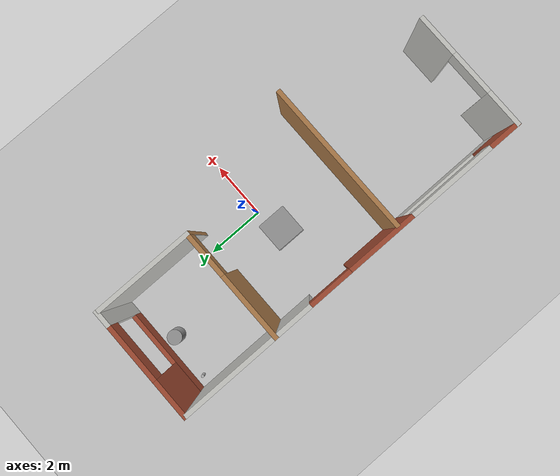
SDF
<sdf version="1.6">
 <world name="default">
  <model name="ground_plane">
   <static>1</static>
   <link name="link">
    <collision name="collision">
     <geometry><plane><normal>0 0 1</normal><size>100 100</size></plane></geometry>
     <surface><friction><ode><mu>100</mu><mu2>50</mu2></ode></friction></surface>
    </collision>
    <visual name="visual">
     <cast_shadows>0</cast_shadows>
     <geometry><plane><normal>0 0 1</normal><size>100 100</size></plane></geometry>
     <material>
      <script><uri>file://media/materials/scripts/gazebo.material</uri><name>Gazebo/Grey</name></script>
     </material>
    </visual>
   </link>
  </model>
  <model name="unit_box_0">
   <pose>-0.935758 -0.265766 0.499995 1e-05 -0 0</pose>
   <link name="link">
    <inertial>
     <mass>1</mass>
     <inertia>
      <ixx>0.166667</ixx>
      <ixy>0</ixy>
      <ixz>0</ixz>
      <iyy>0.166667</iyy>
      <iyz>0</iyz>
      <izz>0.166667</izz>
     </inertia>
    </inertial>
    <collision name="collision"><geometry><box><size>1 1 1</size></box></geometry></collision>
    <visual name="visual">
     <geometry><box><size>1 1 1</size></box></geometry>
     <material>
      <script><name>Gazebo/Grey</name><uri>file://media/materials/scripts/gazebo.material</uri></script>
     </material>
    </visual>
   </link>
  </model>
  <model name="unit_cylinder_0_0">
   <link name="link">
    <inertial>
     <mass>1</mass>
     <inertia><ixx>0.145833</ixx><ixy>0</ixy><ixz>0</ixz><iyy>0.145833</iyy><iyz>0</iyz><izz>0.125</izz></inertia>
    </inertial>
    <visual name="visual">
     <geometry><cylinder><radius>0.25</radius><length>0.5</length></cylinder></geometry>
     <material>
      <script><name>Gazebo/Grey</name><uri>file://media/materials/scripts/gazebo.material</uri></script>
      <ambient>0.3 0.3 0.3 1</ambient>
      <diffuse>0.7 0.7 0.7 1</diffuse>
      <specular>0.01 0.01 0.01 1</specular>
      <emissive>0 0 0 1</emissive>
      <shader type="vertex"><normal_map>__default__</normal_map></shader>
     </material>
    </visual>
    <collision name="collision">
     <geometry><cylinder><radius>0.25</radius><length>0.5</length></cylinder></geometry>
     <surface>
      <friction>
       <ode><mu>1</mu><mu2>1</mu2><fdir1>0 0 0</fdir1><slip1>0</slip1><slip2>0</slip2></ode>
       <torsional>
        <coefficient>1</coefficient>
        <patch_radius>0</patch_radius>
        <surface_radius>0</surface_radius>
        <use_patch_radius>1</use_patch_radius>
        <ode><slip>0</slip></ode>
       </torsional>
      </friction>
      <bounce><restitution_coefficient>0</restitution_coefficient><threshold>1e+06</threshold></bounce>
      <contact>
       <collide_without_contact>0</collide_without_contact>
       <collide_without_contact_bitmask>1</collide_without_contact_bitmask>
       <collide_bitmask>1</collide_bitmask>
       <ode>
        <soft_cfm>0</soft_cfm>
        <soft_erp>0.2</soft_erp>
        <kp>1e+13</kp>
        <kd>1</kd>
        <max_vel>0.01</max_vel>
        <min_depth>0</min_depth>
       </ode>
       <bullet>
        <split_impulse>1</split_impulse>
        <split_impulse_penetration_threshold>-0.01</split_impulse_penetration_threshold>
        <soft_cfm>0</soft_cfm>
        <soft_erp>0.2</soft_erp>
        <kp>1e+13</kp>
        <kd>1</kd>
       </bullet>
      </contact>
     </surface>
    </collision>
   </link>
   <static>0</static>
   <pose>-1.30437 4.62965 0.249991 0 -0 0</pose>
  </model>
  <model name="beer">
   <link name="link">
    <pose>0 0 0.115 0 -0 0</pose>
    <inertial>
     <mass>0.39</mass>
     <inertia><ixx>0.00058</ixx><ixy>0</ixy><ixz>0</ixz><iyy>0.00058</iyy><iyz>0</iyz><izz>0.00019</izz></inertia>
    </inertial>
    <collision name="collision">
     <geometry><cylinder><radius>0.055</radius><length>0.23</length></cylinder></geometry>
    </collision>
    <visual name="visual">
     <geometry><cylinder><radius>0.055</radius><length>0.23</length></cylinder></geometry>
     <material>
      <script>
       <uri>model://beer/materials/scripts</uri>
       <uri>model://beer/materials/textures</uri>
       <name>Beer/Diffuse</name>
      </script>
     </material>
    </visual>
   </link>
   <pose>-2.85151 4.84104 -8e-06 -1e-06 -0 -2.3e-05</pose>
  </model>
  <model name="mybuilding_0_0">
   <link name="Wall_100">
    <pose>-4.97405 -5.32475 0 0 -0 0</pose>
    <inertial>
     <mass>1</mass>
     <inertia><ixx>1</ixx><ixy>0</ixy><ixz>0</ixz><iyy>1</iyy><iyz>0</iyz><izz>1</izz></inertia>
    </inertial>
    <visual name="Wall_100_Visual_0">
     <pose>-1.47284 0 1.25 0 -0 0</pose>
     <geometry><box><size>1.30431 0.15 2.5</size></box></geometry>
     <material>
      <script><uri>file://media/materials/scripts/gazebo.material</uri><name>Gazebo/CeilingTiled</name></script>
      <ambient>0.435 0.796 0.675 1</ambient>
      <diffuse>1 1 1 1</diffuse>
      <specular>0 0 0 1</specular>
      <emissive>0 0 0 1</emissive>
      <shader type="vertex"><normal_map>__default__</normal_map></shader>
     </material>
    </visual>
    <visual name="Wall_100_Visual_1">
     <pose>1.40216 0 1.25 0 -0 0</pose>
     <geometry><box><size>1.44569 0.15 2.5</size></box></geometry>
     <material>
      <script><uri>file://media/materials/scripts/gazebo.material</uri><name>Gazebo/CeilingTiled</name></script>
      <ambient>0.435 0.796 0.675 1</ambient>
      <diffuse>1 1 1 1</diffuse>
      <specular>0 0 0 1</specular>
      <emissive>0 0 0 1</emissive>
      <shader type="vertex"><normal_map>__default__</normal_map></shader>
     </material>
    </visual>
    <visual name="Wall_100_Visual_2">
     <pose>-0.07069 0 2.25 0 -0 0</pose>
     <geometry><box><size>1.5 0.15 0.5</size></box></geometry>
     <material>
      <script><uri>file://media/materials/scripts/gazebo.material</uri><name>Gazebo/CeilingTiled</name></script>
      <ambient>0.435 0.796 0.675 1</ambient>
      <diffuse>1 1 1 1</diffuse>
      <specular>0 0 0 1</specular>
      <emissive>0 0 0 1</emissive>
      <shader type="vertex"><normal_map>__default__</normal_map></shader>
     </material>
    </visual>
    <collision name="Wall_100_Collision_0">
     <pose>-1.47284 0 1.25 0 -0 0</pose>
     <geometry><box><size>1.30431 0.15 2.5</size></box></geometry>
     <surface>
      <friction>
       <ode><mu>1</mu><mu2>1</mu2><fdir1>0 0 0</fdir1><slip1>0</slip1><slip2>0</slip2></ode>
       <torsional>
        <coefficient>1</coefficient>
        <patch_radius>0</patch_radius>
        <surface_radius>0</surface_radius>
        <use_patch_radius>1</use_patch_radius>
        <ode><slip>0</slip></ode>
       </torsional>
      </friction>
      <bounce><restitution_coefficient>0</restitution_coefficient><threshold>1e+06</threshold></bounce>
      <contact>
       <collide_without_contact>0</collide_without_contact>
       <collide_without_contact_bitmask>1</collide_without_contact_bitmask>
       <collide_bitmask>1</collide_bitmask>
       <ode>
        <soft_cfm>0</soft_cfm>
        <soft_erp>0.2</soft_erp>
        <kp>1e+13</kp>
        <kd>1</kd>
        <max_vel>0.01</max_vel>
        <min_depth>0</min_depth>
       </ode>
       <bullet>
        <split_impulse>1</split_impulse>
        <split_impulse_penetration_threshold>-0.01</split_impulse_penetration_threshold>
        <soft_cfm>0</soft_cfm>
        <soft_erp>0.2</soft_erp>
        <kp>1e+13</kp>
        <kd>1</kd>
       </bullet>
      </contact>
     </surface>
    </collision>
    <collision name="Wall_100_Collision_1">
     <pose>1.40216 0 1.25 0 -0 0</pose>
     <geometry><box><size>1.44569 0.15 2.5</size></box></geometry>
     <surface>
      <friction>
       <ode><mu>1</mu><mu2>1</mu2><fdir1>0 0 0</fdir1><slip1>0</slip1><slip2>0</slip2></ode>
       <torsional>
        <coefficient>1</coefficient>
        <patch_radius>0</patch_radius>
        <surface_radius>0</surface_radius>
        <use_patch_radius>1</use_patch_radius>
        <ode><slip>0</slip></ode>
       </torsional>
      </friction>
      <bounce><restitution_coefficient>0</restitution_coefficient><threshold>1e+06</threshold></bounce>
      <contact>
       <collide_without_contact>0</collide_without_contact>
       <collide_without_contact_bitmask>1</collide_without_contact_bitmask>
       <collide_bitmask>1</collide_bitmask>
       <ode>
        <soft_cfm>0</soft_cfm>
        <soft_erp>0.2</soft_erp>
        <kp>1e+13</kp>
        <kd>1</kd>
        <max_vel>0.01</max_vel>
        <min_depth>0</min_depth>
       </ode>
       <bullet>
        <split_impulse>1</split_impulse>
        <split_impulse_penetration_threshold>-0.01</split_impulse_penetration_threshold>
        <soft_cfm>0</soft_cfm>
        <soft_erp>0.2</soft_erp>
        <kp>1e+13</kp>
        <kd>1</kd>
       </bullet>
      </contact>
     </surface>
    </collision>
    <collision name="Wall_100_Collision_2">
     <pose>-0.07069 0 2.25 0 -0 0</pose>
     <geometry><box><size>1.5 0.15 0.5</size></box></geometry>
     <surface>
      <friction>
       <ode><mu>1</mu><mu2>1</mu2><fdir1>0 0 0</fdir1><slip1>0</slip1><slip2>0</slip2></ode>
       <torsional>
        <coefficient>1</coefficient>
        <patch_radius>0</patch_radius>
        <surface_radius>0</surface_radius>
        <use_patch_radius>1</use_patch_radius>
        <ode><slip>0</slip></ode>
       </torsional>
      </friction>
      <bounce><restitution_coefficient>0</restitution_coefficient><threshold>1e+06</threshold></bounce>
      <contact>
       <collide_without_contact>0</collide_without_contact>
       <collide_without_contact_bitmask>1</collide_without_contact_bitmask>
       <collide_bitmask>1</collide_bitmask>
       <ode>
        <soft_cfm>0</soft_cfm>
        <soft_erp>0.2</soft_erp>
        <kp>1e+13</kp>
        <kd>1</kd>
        <max_vel>0.01</max_vel>
        <min_depth>0</min_depth>
       </ode>
       <bullet>
        <split_impulse>1</split_impulse>
        <split_impulse_penetration_threshold>-0.01</split_impulse_penetration_threshold>
        <soft_cfm>0</soft_cfm>
        <soft_erp>0.2</soft_erp>
        <kp>1e+13</kp>
        <kd>1</kd>
       </bullet>
      </contact>
     </surface>
    </collision>
   </link>
   <link name="Wall_124">
    <pose>-3.17983 5.60426 0 0 -0 1.5708</pose>
    <visual name="Wall_124_Visual">
     <pose>0 0 1.25 0 -0 0</pose>
     <geometry><box><size>3.5 0.15 2.5</size></box></geometry>
     <material>
      <script><uri>file://media/materials/scripts/gazebo.material</uri><name>Gazebo/CeilingTiled</name></script>
      <ambient>0.333333 0.333333 0.498039 1</ambient>
      <diffuse>1 1 1 1</diffuse>
      <specular>0 0 0 1</specular>
      <emissive>0 0 0 1</emissive>
     </material>
    </visual>
    <collision name="Wall_124_Collision">
     <pose>0 0 1.25 0 -0 0</pose>
     <geometry><box><size>3.5 0.15 2.5</size></box></geometry>
     <surface>
      <friction>
       <ode><mu>1</mu><mu2>1</mu2><fdir1>0 0 0</fdir1><slip1>0</slip1><slip2>0</slip2></ode>
       <torsional>
        <coefficient>1</coefficient>
        <patch_radius>0</patch_radius>
        <surface_radius>0</surface_radius>
        <use_patch_radius>1</use_patch_radius>
        <ode><slip>0</slip></ode>
       </torsional>
      </friction>
      <bounce><restitution_coefficient>0</restitution_coefficient><threshold>1e+06</threshold></bounce>
      <contact>
       <collide_without_contact>0</collide_without_contact>
       <collide_without_contact_bitmask>1</collide_without_contact_bitmask>
       <collide_bitmask>1</collide_bitmask>
       <ode>
        <soft_cfm>0</soft_cfm>
        <soft_erp>0.2</soft_erp>
        <kp>1e+13</kp>
        <kd>1</kd>
        <max_vel>0.01</max_vel>
        <min_depth>0</min_depth>
       </ode>
       <bullet>
        <split_impulse>1</split_impulse>
        <split_impulse_penetration_threshold>-0.01</split_impulse_penetration_threshold>
        <soft_cfm>0</soft_cfm>
        <soft_erp>0.2</soft_erp>
        <kp>1e+13</kp>
        <kd>1</kd>
       </bullet>
      </contact>
     </surface>
    </collision>
   </link>
   <link name="Wall_127">
    <pose>-5.10482 7.27926 0 0 -0 3.14159</pose>
    <inertial>
     <mass>1</mass>
     <inertia><ixx>1</ixx><ixy>0</ixy><ixz>0</ixz><iyy>1</iyy><iyz>0</iyz><izz>1</izz></inertia>
    </inertial>
    <visual name="Wall_127_Visual_0">
     <pose>-1.69078 0 1.25 0 -0 0</pose>
     <geometry><box><size>0.618444 0.15 2.5</size></box></geometry>
     <material>
      <script><uri>file://media/materials/scripts/gazebo.material</uri><name>Gazebo/CeilingTiled</name></script>
      <ambient>1 1 1 1</ambient>
      <diffuse>1 1 1 1</diffuse>
      <specular>0.2 0.2 0.2 1</specular>
      <emissive>0 0 0 1</emissive>
      <shader type="vertex"><normal_map>__default__</normal_map></shader>
     </material>
    </visual>
    <visual name="Wall_127_Visual_1">
     <pose>0.309222 0 0.25 0 -0 0</pose>
     <geometry><box><size>3.38156 0.15 0.5</size></box></geometry>
     <material>
      <script><uri>file://media/materials/scripts/gazebo.material</uri><name>Gazebo/Bricks</name></script>
      <ambient>1 1 1 1</ambient>
      <diffuse>1 1 1 1</diffuse>
      <specular>0.2 0.2 0.2 1</specular>
      <emissive>0 0 0 1</emissive>
      <shader type="vertex"><normal_map>__default__</normal_map></shader>
     </material>
    </visual>
    <visual name="Wall_127_Visual_3">
     <pose>-0.381556 0 2.25 0 -0 0</pose>
     <geometry><box><size>2 0.15 0.5</size></box></geometry>
     <material>
      <script><uri>file://media/materials/scripts/gazebo.material</uri><name>Gazebo/Bricks</name></script>
      <ambient>1 1 1 1</ambient>
      <diffuse>1 1 1 1</diffuse>
      <specular>0.2 0.2 0.2 1</specular>
      <emissive>0 0 0 1</emissive>
      <shader type="vertex"><normal_map>__default__</normal_map></shader>
     </material>
    </visual>
    <visual name="Wall_127_Visual_2">
     <pose>1.30922 0 1.5 0 -0 0</pose>
     <geometry><box><size>1.38156 0.15 2</size></box></geometry>
     <material>
      <script><uri>file://media/materials/scripts/gazebo.material</uri><name>Gazebo/Bricks</name></script>
      <ambient>1 1 1 1</ambient>
      <diffuse>1 1 1 1</diffuse>
      <specular>0.2 0.2 0.2 1</specular>
      <emissive>0 0 0 1</emissive>
      <shader type="vertex"><normal_map>__default__</normal_map></shader>
     </material>
    </visual>
    <collision name="Wall_127_Collision_0">
     <pose>-1.69078 0 1.25 0 -0 0</pose>
     <geometry><box><size>0.618444 0.15 2.5</size></box></geometry>
     <surface>
      <friction>
       <ode><mu>1</mu><mu2>1</mu2><fdir1>0 0 0</fdir1><slip1>0</slip1><slip2>0</slip2></ode>
       <torsional>
        <coefficient>1</coefficient>
        <patch_radius>0</patch_radius>
        <surface_radius>0</surface_radius>
        <use_patch_radius>1</use_patch_radius>
        <ode><slip>0</slip></ode>
       </torsional>
      </friction>
      <bounce><restitution_coefficient>0</restitution_coefficient><threshold>1e+06</threshold></bounce>
      <contact>
       <collide_without_contact>0</collide_without_contact>
       <collide_without_contact_bitmask>1</collide_without_contact_bitmask>
       <collide_bitmask>1</collide_bitmask>
       <ode>
        <soft_cfm>0</soft_cfm>
        <soft_erp>0.2</soft_erp>
        <kp>1e+13</kp>
        <kd>1</kd>
        <max_vel>0.01</max_vel>
        <min_depth>0</min_depth>
       </ode>
       <bullet>
        <split_impulse>1</split_impulse>
        <split_impulse_penetration_threshold>-0.01</split_impulse_penetration_threshold>
        <soft_cfm>0</soft_cfm>
        <soft_erp>0.2</soft_erp>
        <kp>1e+13</kp>
        <kd>1</kd>
       </bullet>
      </contact>
     </surface>
    </collision>
    <collision name="Wall_127_Collision_1">
     <pose>0.309222 0 0.25 0 -0 0</pose>
     <geometry><box><size>3.38156 0.15 0.5</size></box></geometry>
     <surface>
      <friction>
       <ode><mu>1</mu><mu2>1</mu2><fdir1>0 0 0</fdir1><slip1>0</slip1><slip2>0</slip2></ode>
       <torsional>
        <coefficient>1</coefficient>
        <patch_radius>0</patch_radius>
        <surface_radius>0</surface_radius>
        <use_patch_radius>1</use_patch_radius>
        <ode><slip>0</slip></ode>
       </torsional>
      </friction>
      <bounce><restitution_coefficient>0</restitution_coefficient><threshold>1e+06</threshold></bounce>
      <contact>
       <collide_without_contact>0</collide_without_contact>
       <collide_without_contact_bitmask>1</collide_without_contact_bitmask>
       <collide_bitmask>1</collide_bitmask>
       <ode>
        <soft_cfm>0</soft_cfm>
        <soft_erp>0.2</soft_erp>
        <kp>1e+13</kp>
        <kd>1</kd>
        <max_vel>0.01</max_vel>
        <min_depth>0</min_depth>
       </ode>
       <bullet>
        <split_impulse>1</split_impulse>
        <split_impulse_penetration_threshold>-0.01</split_impulse_penetration_threshold>
        <soft_cfm>0</soft_cfm>
        <soft_erp>0.2</soft_erp>
        <kp>1e+13</kp>
        <kd>1</kd>
       </bullet>
      </contact>
     </surface>
    </collision>
    <collision name="Wall_127_Collision_2">
     <pose>1.30922 0 1.5 0 -0 0</pose>
     <geometry><box><size>1.38156 0.15 2</size></box></geometry>
     <surface>
      <friction>
       <ode><mu>1</mu><mu2>1</mu2><fdir1>0 0 0</fdir1><slip1>0</slip1><slip2>0</slip2></ode>
       <torsional>
        <coefficient>1</coefficient>
        <patch_radius>0</patch_radius>
        <surface_radius>0</surface_radius>
        <use_patch_radius>1</use_patch_radius>
        <ode><slip>0</slip></ode>
       </torsional>
      </friction>
      <bounce><restitution_coefficient>0</restitution_coefficient><threshold>1e+06</threshold></bounce>
      <contact>
       <collide_without_contact>0</collide_without_contact>
       <collide_without_contact_bitmask>1</collide_without_contact_bitmask>
       <collide_bitmask>1</collide_bitmask>
       <ode>
        <soft_cfm>0</soft_cfm>
        <soft_erp>0.2</soft_erp>
        <kp>1e+13</kp>
        <kd>1</kd>
        <max_vel>0.01</max_vel>
        <min_depth>0</min_depth>
       </ode>
       <bullet>
        <split_impulse>1</split_impulse>
        <split_impulse_penetration_threshold>-0.01</split_impulse_penetration_threshold>
        <soft_cfm>0</soft_cfm>
        <soft_erp>0.2</soft_erp>
        <kp>1e+13</kp>
        <kd>1</kd>
       </bullet>
      </contact>
     </surface>
    </collision>
    <collision name="Wall_127_Collision_3">
     <pose>-0.381556 0 2.25 0 -0 0</pose>
     <geometry><box><size>2 0.15 0.5</size></box></geometry>
     <surface>
      <friction>
       <ode><mu>1</mu><mu2>1</mu2><fdir1>0 0 0</fdir1><slip1>0</slip1><slip2>0</slip2></ode>
       <torsional>
        <coefficient>1</coefficient>
        <patch_radius>0</patch_radius>
        <surface_radius>0</surface_radius>
        <use_patch_radius>1</use_patch_radius>
        <ode><slip>0</slip></ode>
       </torsional>
      </friction>
      <bounce><restitution_coefficient>0</restitution_coefficient><threshold>1e+06</threshold></bounce>
      <contact>
       <collide_without_contact>0</collide_without_contact>
       <collide_without_contact_bitmask>1</collide_without_contact_bitmask>
       <collide_bitmask>1</collide_bitmask>
       <ode>
        <soft_cfm>0</soft_cfm>
        <soft_erp>0.2</soft_erp>
        <kp>1e+13</kp>
        <kd>1</kd>
        <max_vel>0.01</max_vel>
        <min_depth>0</min_depth>
       </ode>
       <bullet>
        <split_impulse>1</split_impulse>
        <split_impulse_penetration_threshold>-0.01</split_impulse_penetration_threshold>
        <soft_cfm>0</soft_cfm>
        <soft_erp>0.2</soft_erp>
        <kp>1e+13</kp>
        <kd>1</kd>
       </bullet>
      </contact>
     </surface>
    </collision>
   </link>
   <link name="Wall_128">
    <pose>-7.02982 0.979263 0 0 0 -1.5708</pose>
    <inertial>
     <mass>1</mass>
     <inertia><ixx>1</ixx><ixy>0</ixy><ixz>0</ixz><iyy>1</iyy><iyz>0</iyz><izz>1</izz></inertia>
    </inertial>
    <visual name="Wall_128_Visual_0">
     <pose>-3.99417 0 1.25 0 -0 0</pose>
     <geometry><box><size>4.76166 0.15 2.5</size></box></geometry>
     <material>
      <script><uri>file://media/materials/scripts/gazebo.material</uri><name>Gazebo/CeilingTiled</name></script>
      <ambient>0.2 0.6 0.8 1</ambient>
      <diffuse>1 1 1 1</diffuse>
      <specular>0.2 0.2 0.2 1</specular>
      <emissive>0 0 0 1</emissive>
      <shader type="vertex"><normal_map>__default__</normal_map></shader>
     </material>
    </visual>
    <visual name="Wall_128_Visual_1">
     <pose>1.07472 0 1.25 0 -0 0</pose>
     <geometry><box><size>2.37612 0.15 2.5</size></box></geometry>
     <material>
      <script><uri>file://media/materials/scripts/gazebo.material</uri><name>Gazebo/Bricks</name></script>
      <ambient>1 1 1 1</ambient>
      <diffuse>1 1 1 1</diffuse>
      <specular>0.2 0.2 0.2 1</specular>
      <emissive>0 0 0 1</emissive>
      <shader type="vertex"><normal_map>__default__</normal_map></shader>
     </material>
    </visual>
    <visual name="Wall_128_Visual_3">
     <pose>5.81889 0 1.75 0 -0 0</pose>
     <geometry><box><size>1.11222 0.15 1.5</size></box></geometry>
     <material>
      <script><uri>file://media/materials/scripts/gazebo.material</uri><name>Gazebo/Bricks</name></script>
      <ambient>1 1 1 1</ambient>
      <diffuse>1 1 1 1</diffuse>
      <specular>0.2 0.2 0.2 1</specular>
      <emissive>0 0 0 1</emissive>
      <shader type="vertex"><normal_map>__default__</normal_map></shader>
     </material>
    </visual>
    <visual name="Wall_128_Visual_2">
     <pose>4.31889 0 0.5 0 -0 0</pose>
     <geometry><box><size>4.11222 0.15 1</size></box></geometry>
     <material>
      <script><uri>file://media/materials/scripts/gazebo.material</uri><name>Gazebo/CeilingTiled</name></script>
      <ambient>0.6 1 0.5 1</ambient>
      <diffuse>1 1 1 1</diffuse>
      <specular>0.2 0.2 0.2 1</specular>
      <emissive>0 0 0 1</emissive>
      <shader type="vertex"><normal_map>__default__</normal_map></shader>
     </material>
    </visual>
    <visual name="Wall_128_Visual_4">
     <pose>-0.863345 0 2.25 0 -0 0</pose>
     <geometry><box><size>1.5 0.15 0.5</size></box></geometry>
     <material>
      <script><uri>file://media/materials/scripts/gazebo.material</uri><name>Gazebo/Bricks</name></script>
      <ambient>1 1 1 1</ambient>
      <diffuse>1 1 1 1</diffuse>
      <specular>0.2 0.2 0.2 1</specular>
      <emissive>0 0 0 1</emissive>
      <shader type="vertex"><normal_map>__default__</normal_map></shader>
     </material>
    </visual>
    <visual name="Wall_128_Visual_5">
     <pose>3.76278 0 2.25 0 -0 0</pose>
     <geometry><box><size>3 0.15 0.5</size></box></geometry>
     <material>
      <script><uri>file://media/materials/scripts/gazebo.material</uri><name>Gazebo/CeilingTiled</name></script>
      <ambient>0.3 0.4 0.3 1</ambient>
      <diffuse>1 1 1 1</diffuse>
      <specular>0.2 0.2 0.2 1</specular>
      <emissive>0 0 0 1</emissive>
      <shader type="vertex"><normal_map>__default__</normal_map></shader>
     </material>
    </visual>
    <collision name="Wall_128_Collision_0">
     <pose>-3.99417 0 1.25 0 -0 0</pose>
     <geometry><box><size>4.76166 0.15 2.5</size></box></geometry>
     <surface>
      <friction>
       <ode><mu>1</mu><mu2>1</mu2><fdir1>0 0 0</fdir1><slip1>0</slip1><slip2>0</slip2></ode>
       <torsional>
        <coefficient>1</coefficient>
        <patch_radius>0</patch_radius>
        <surface_radius>0</surface_radius>
        <use_patch_radius>1</use_patch_radius>
        <ode><slip>0</slip></ode>
       </torsional>
      </friction>
      <bounce><restitution_coefficient>0</restitution_coefficient><threshold>1e+06</threshold></bounce>
      <contact>
       <collide_without_contact>0</collide_without_contact>
       <collide_without_contact_bitmask>1</collide_without_contact_bitmask>
       <collide_bitmask>1</collide_bitmask>
       <ode>
        <soft_cfm>0</soft_cfm>
        <soft_erp>0.2</soft_erp>
        <kp>1e+13</kp>
        <kd>1</kd>
        <max_vel>0.01</max_vel>
        <min_depth>0</min_depth>
       </ode>
       <bullet>
        <split_impulse>1</split_impulse>
        <split_impulse_penetration_threshold>-0.01</split_impulse_penetration_threshold>
        <soft_cfm>0</soft_cfm>
        <soft_erp>0.2</soft_erp>
        <kp>1e+13</kp>
        <kd>1</kd>
       </bullet>
      </contact>
     </surface>
    </collision>
    <collision name="Wall_128_Collision_1">
     <pose>1.07472 0 1.25 0 -0 0</pose>
     <geometry><box><size>2.37612 0.15 2.5</size></box></geometry>
     <surface>
      <friction>
       <ode><mu>1</mu><mu2>1</mu2><fdir1>0 0 0</fdir1><slip1>0</slip1><slip2>0</slip2></ode>
       <torsional>
        <coefficient>1</coefficient>
        <patch_radius>0</patch_radius>
        <surface_radius>0</surface_radius>
        <use_patch_radius>1</use_patch_radius>
        <ode><slip>0</slip></ode>
       </torsional>
      </friction>
      <bounce><restitution_coefficient>0</restitution_coefficient><threshold>1e+06</threshold></bounce>
      <contact>
       <collide_without_contact>0</collide_without_contact>
       <collide_without_contact_bitmask>1</collide_without_contact_bitmask>
       <collide_bitmask>1</collide_bitmask>
       <ode>
        <soft_cfm>0</soft_cfm>
        <soft_erp>0.2</soft_erp>
        <kp>1e+13</kp>
        <kd>1</kd>
        <max_vel>0.01</max_vel>
        <min_depth>0</min_depth>
       </ode>
       <bullet>
        <split_impulse>1</split_impulse>
        <split_impulse_penetration_threshold>-0.01</split_impulse_penetration_threshold>
        <soft_cfm>0</soft_cfm>
        <soft_erp>0.2</soft_erp>
        <kp>1e+13</kp>
        <kd>1</kd>
       </bullet>
      </contact>
     </surface>
    </collision>
    <collision name="Wall_128_Collision_4">
     <pose>-0.863345 0 2.25 0 -0 0</pose>
     <geometry><box><size>1.5 0.15 0.5</size></box></geometry>
     <surface>
      <friction>
       <ode><mu>1</mu><mu2>1</mu2><fdir1>0 0 0</fdir1><slip1>0</slip1><slip2>0</slip2></ode>
       <torsional>
        <coefficient>1</coefficient>
        <patch_radius>0</patch_radius>
        <surface_radius>0</surface_radius>
        <use_patch_radius>1</use_patch_radius>
        <ode><slip>0</slip></ode>
       </torsional>
      </friction>
      <bounce><restitution_coefficient>0</restitution_coefficient><threshold>1e+06</threshold></bounce>
      <contact>
       <collide_without_contact>0</collide_without_contact>
       <collide_without_contact_bitmask>1</collide_without_contact_bitmask>
       <collide_bitmask>1</collide_bitmask>
       <ode>
        <soft_cfm>0</soft_cfm>
        <soft_erp>0.2</soft_erp>
        <kp>1e+13</kp>
        <kd>1</kd>
        <max_vel>0.01</max_vel>
        <min_depth>0</min_depth>
       </ode>
       <bullet>
        <split_impulse>1</split_impulse>
        <split_impulse_penetration_threshold>-0.01</split_impulse_penetration_threshold>
        <soft_cfm>0</soft_cfm>
        <soft_erp>0.2</soft_erp>
        <kp>1e+13</kp>
        <kd>1</kd>
       </bullet>
      </contact>
     </surface>
    </collision>
    <collision name="Wall_128_Collision_3">
     <pose>5.81889 0 1.75 0 -0 0</pose>
     <geometry><box><size>1.11222 0.15 1.5</size></box></geometry>
     <surface>
      <friction>
       <ode><mu>1</mu><mu2>1</mu2><fdir1>0 0 0</fdir1><slip1>0</slip1><slip2>0</slip2></ode>
       <torsional>
        <coefficient>1</coefficient>
        <patch_radius>0</patch_radius>
        <surface_radius>0</surface_radius>
        <use_patch_radius>1</use_patch_radius>
        <ode><slip>0</slip></ode>
       </torsional>
      </friction>
      <bounce><restitution_coefficient>0</restitution_coefficient><threshold>1e+06</threshold></bounce>
      <contact>
       <collide_without_contact>0</collide_without_contact>
       <collide_without_contact_bitmask>1</collide_without_contact_bitmask>
       <collide_bitmask>1</collide_bitmask>
       <ode>
        <soft_cfm>0</soft_cfm>
        <soft_erp>0.2</soft_erp>
        <kp>1e+13</kp>
        <kd>1</kd>
        <max_vel>0.01</max_vel>
        <min_depth>0</min_depth>
       </ode>
       <bullet>
        <split_impulse>1</split_impulse>
        <split_impulse_penetration_threshold>-0.01</split_impulse_penetration_threshold>
        <soft_cfm>0</soft_cfm>
        <soft_erp>0.2</soft_erp>
        <kp>1e+13</kp>
        <kd>1</kd>
       </bullet>
      </contact>
     </surface>
    </collision>
    <collision name="Wall_128_Collision_2">
     <pose>4.31889 0 0.5 0 -0 0</pose>
     <geometry><box><size>4.11222 0.15 1</size></box></geometry>
     <surface>
      <friction>
       <ode><mu>1</mu><mu2>1</mu2><fdir1>0 0 0</fdir1><slip1>0</slip1><slip2>0</slip2></ode>
       <torsional>
        <coefficient>1</coefficient>
        <patch_radius>0</patch_radius>
        <surface_radius>0</surface_radius>
        <use_patch_radius>1</use_patch_radius>
        <ode><slip>0</slip></ode>
       </torsional>
      </friction>
      <bounce><restitution_coefficient>0</restitution_coefficient><threshold>1e+06</threshold></bounce>
      <contact>
       <collide_without_contact>0</collide_without_contact>
       <collide_without_contact_bitmask>1</collide_without_contact_bitmask>
       <collide_bitmask>1</collide_bitmask>
       <ode>
        <soft_cfm>0</soft_cfm>
        <soft_erp>0.2</soft_erp>
        <kp>1e+13</kp>
        <kd>1</kd>
        <max_vel>0.01</max_vel>
        <min_depth>0</min_depth>
       </ode>
       <bullet>
        <split_impulse>1</split_impulse>
        <split_impulse_penetration_threshold>-0.01</split_impulse_penetration_threshold>
        <soft_cfm>0</soft_cfm>
        <soft_erp>0.2</soft_erp>
        <kp>1e+13</kp>
        <kd>1</kd>
       </bullet>
      </contact>
     </surface>
    </collision>
    <collision name="Wall_128_Collision_5">
     <pose>3.76278 0 2.25 0 -0 0</pose>
     <geometry><box><size>3 0.15 0.5</size></box></geometry>
     <surface>
      <friction>
       <ode><mu>1</mu><mu2>1</mu2><fdir1>0 0 0</fdir1><slip1>0</slip1><slip2>0</slip2></ode>
       <torsional>
        <coefficient>1</coefficient>
        <patch_radius>0</patch_radius>
        <surface_radius>0</surface_radius>
        <use_patch_radius>1</use_patch_radius>
        <ode><slip>0</slip></ode>
       </torsional>
      </friction>
      <bounce><restitution_coefficient>0</restitution_coefficient><threshold>1e+06</threshold></bounce>
      <contact>
       <collide_without_contact>0</collide_without_contact>
       <collide_without_contact_bitmask>1</collide_without_contact_bitmask>
       <collide_bitmask>1</collide_bitmask>
       <ode>
        <soft_cfm>0</soft_cfm>
        <soft_erp>0.2</soft_erp>
        <kp>1e+13</kp>
        <kd>1</kd>
        <max_vel>0.01</max_vel>
        <min_depth>0</min_depth>
       </ode>
       <bullet>
        <split_impulse>1</split_impulse>
        <split_impulse_penetration_threshold>-0.01</split_impulse_penetration_threshold>
        <soft_cfm>0</soft_cfm>
        <soft_erp>0.2</soft_erp>
        <kp>1e+13</kp>
        <kd>1</kd>
       </bullet>
      </contact>
     </surface>
    </collision>
   </link>
   <link name="Wall_130">
    <pose>-5.10482 3.92926 0 0 -0 3.14159</pose>
    <visual name="Wall_130_Visual_0">
     <pose>-1.93168 0 1.25 0 -0 0</pose>
     <geometry><box><size>0.136646 0.15 2.5</size></box></geometry>
     <material>
      <script><uri>file://media/materials/scripts/gazebo.material</uri><name>Gazebo/Wood</name></script>
      <ambient>1 1 1 1</ambient>
      <diffuse>1 1 1 1</diffuse>
      <specular>0.2 0.2 0.2 1</specular>
      <emissive>0 0 0 1</emissive>
     </material>
    </visual>
    <visual name="Wall_130_Visual_1">
     <pose>0.818323 0 1.25 0 -0 0</pose>
     <geometry><box><size>2.36335 0.15 2.5</size></box></geometry>
     <material>
      <script><uri>file://media/materials/scripts/gazebo.material</uri><name>Gazebo/Wood</name></script>
      <ambient>1 1 1 1</ambient>
      <diffuse>1 1 1 1</diffuse>
      <specular>0.2 0.2 0.2 1</specular>
      <emissive>0 0 0 1</emissive>
     </material>
    </visual>
    <visual name="Wall_130_Visual_2">
     <pose>-1.11335 0 2.25 0 -0 0</pose>
     <geometry><box><size>1.5 0.15 0.5</size></box></geometry>
     <material>
      <script><uri>file://media/materials/scripts/gazebo.material</uri><name>Gazebo/Wood</name></script>
      <ambient>1 1 1 1</ambient>
      <diffuse>1 1 1 1</diffuse>
      <specular>0.2 0.2 0.2 1</specular>
      <emissive>0 0 0 1</emissive>
     </material>
    </visual>
    <collision name="Wall_130_Collision_0">
     <pose>-1.93168 0 1.25 0 -0 0</pose>
     <geometry><box><size>0.136646 0.15 2.5</size></box></geometry>
     <surface>
      <friction>
       <ode><mu>1</mu><mu2>1</mu2><fdir1>0 0 0</fdir1><slip1>0</slip1><slip2>0</slip2></ode>
       <torsional>
        <coefficient>1</coefficient>
        <patch_radius>0</patch_radius>
        <surface_radius>0</surface_radius>
        <use_patch_radius>1</use_patch_radius>
        <ode><slip>0</slip></ode>
       </torsional>
      </friction>
      <bounce><restitution_coefficient>0</restitution_coefficient><threshold>1e+06</threshold></bounce>
      <contact>
       <collide_without_contact>0</collide_without_contact>
       <collide_without_contact_bitmask>1</collide_without_contact_bitmask>
       <collide_bitmask>1</collide_bitmask>
       <ode>
        <soft_cfm>0</soft_cfm>
        <soft_erp>0.2</soft_erp>
        <kp>1e+13</kp>
        <kd>1</kd>
        <max_vel>0.01</max_vel>
        <min_depth>0</min_depth>
       </ode>
       <bullet>
        <split_impulse>1</split_impulse>
        <split_impulse_penetration_threshold>-0.01</split_impulse_penetration_threshold>
        <soft_cfm>0</soft_cfm>
        <soft_erp>0.2</soft_erp>
        <kp>1e+13</kp>
        <kd>1</kd>
       </bullet>
      </contact>
     </surface>
    </collision>
    <collision name="Wall_130_Collision_1">
     <pose>0.818323 0 1.25 0 -0 0</pose>
     <geometry><box><size>2.36335 0.15 2.5</size></box></geometry>
     <surface>
      <friction>
       <ode><mu>1</mu><mu2>1</mu2><fdir1>0 0 0</fdir1><slip1>0</slip1><slip2>0</slip2></ode>
       <torsional>
        <coefficient>1</coefficient>
        <patch_radius>0</patch_radius>
        <surface_radius>0</surface_radius>
        <use_patch_radius>1</use_patch_radius>
        <ode><slip>0</slip></ode>
       </torsional>
      </friction>
      <bounce><restitution_coefficient>0</restitution_coefficient><threshold>1e+06</threshold></bounce>
      <contact>
       <collide_without_contact>0</collide_without_contact>
       <collide_without_contact_bitmask>1</collide_without_contact_bitmask>
       <collide_bitmask>1</collide_bitmask>
       <ode>
        <soft_cfm>0</soft_cfm>
        <soft_erp>0.2</soft_erp>
        <kp>1e+13</kp>
        <kd>1</kd>
        <max_vel>0.01</max_vel>
        <min_depth>0</min_depth>
       </ode>
       <bullet>
        <split_impulse>1</split_impulse>
        <split_impulse_penetration_threshold>-0.01</split_impulse_penetration_threshold>
        <soft_cfm>0</soft_cfm>
        <soft_erp>0.2</soft_erp>
        <kp>1e+13</kp>
        <kd>1</kd>
       </bullet>
      </contact>
     </surface>
    </collision>
    <collision name="Wall_130_Collision_2">
     <pose>-1.11335 0 2.25 0 -0 0</pose>
     <geometry><box><size>1.5 0.15 0.5</size></box></geometry>
     <surface>
      <friction>
       <ode><mu>1</mu><mu2>1</mu2><fdir1>0 0 0</fdir1><slip1>0</slip1><slip2>0</slip2></ode>
       <torsional>
        <coefficient>1</coefficient>
        <patch_radius>0</patch_radius>
        <surface_radius>0</surface_radius>
        <use_patch_radius>1</use_patch_radius>
        <ode><slip>0</slip></ode>
       </torsional>
      </friction>
      <bounce><restitution_coefficient>0</restitution_coefficient><threshold>1e+06</threshold></bounce>
      <contact>
       <collide_without_contact>0</collide_without_contact>
       <collide_without_contact_bitmask>1</collide_without_contact_bitmask>
       <collide_bitmask>1</collide_bitmask>
       <ode>
        <soft_cfm>0</soft_cfm>
        <soft_erp>0.2</soft_erp>
        <kp>1e+13</kp>
        <kd>1</kd>
        <max_vel>0.01</max_vel>
        <min_depth>0</min_depth>
       </ode>
       <bullet>
        <split_impulse>1</split_impulse>
        <split_impulse_penetration_threshold>-0.01</split_impulse_penetration_threshold>
        <soft_cfm>0</soft_cfm>
        <soft_erp>0.2</soft_erp>
        <kp>1e+13</kp>
        <kd>1</kd>
       </bullet>
      </contact>
     </surface>
    </collision>
   </link>
   <link name="Wall_133">
    <pose>-4.37031 -0.754398 0 0 -0 3.14159</pose>
    <visual name="Wall_133_Visual">
     <pose>0 0 1.25 0 -0 0</pose>
     <geometry><box><size>5.25 0.15 2.5</size></box></geometry>
     <material>
      <script><uri>file://media/materials/scripts/gazebo.material</uri><name>Gazebo/Wood</name></script>
      <ambient>1 1 1 1</ambient>
      <diffuse>1 1 1 1</diffuse>
      <specular>0.2 0.2 0.2 1</specular>
      <emissive>0 0 0 1</emissive>
     </material>
    </visual>
    <collision name="Wall_133_Collision">
     <pose>0 0 1.25 0 -0 0</pose>
     <geometry><box><size>5.25 0.15 2.5</size></box></geometry>
     <surface>
      <friction>
       <ode><mu>1</mu><mu2>1</mu2><fdir1>0 0 0</fdir1><slip1>0</slip1><slip2>0</slip2></ode>
       <torsional>
        <coefficient>1</coefficient>
        <patch_radius>0</patch_radius>
        <surface_radius>0</surface_radius>
        <use_patch_radius>1</use_patch_radius>
        <ode><slip>0</slip></ode>
       </torsional>
      </friction>
      <bounce><restitution_coefficient>0</restitution_coefficient><threshold>1e+06</threshold></bounce>
      <contact>
       <collide_without_contact>0</collide_without_contact>
       <collide_without_contact_bitmask>1</collide_without_contact_bitmask>
       <collide_bitmask>1</collide_bitmask>
       <ode>
        <soft_cfm>0</soft_cfm>
        <soft_erp>0.2</soft_erp>
        <kp>1e+13</kp>
        <kd>1</kd>
        <max_vel>0.01</max_vel>
        <min_depth>0</min_depth>
       </ode>
       <bullet>
        <split_impulse>1</split_impulse>
        <split_impulse_penetration_threshold>-0.01</split_impulse_penetration_threshold>
        <soft_cfm>0</soft_cfm>
        <soft_erp>0.2</soft_erp>
        <kp>1e+13</kp>
        <kd>1</kd>
       </bullet>
      </contact>
     </surface>
    </collision>
   </link>
   <static>1</static>
   <pose>3.78931 -2.0956 0 0 -0 0</pose>
  </model>
 </world>
</sdf>
